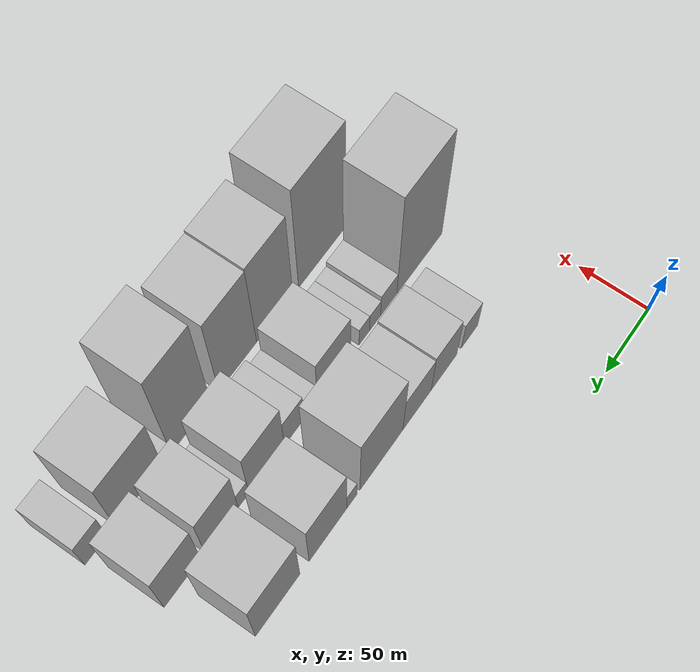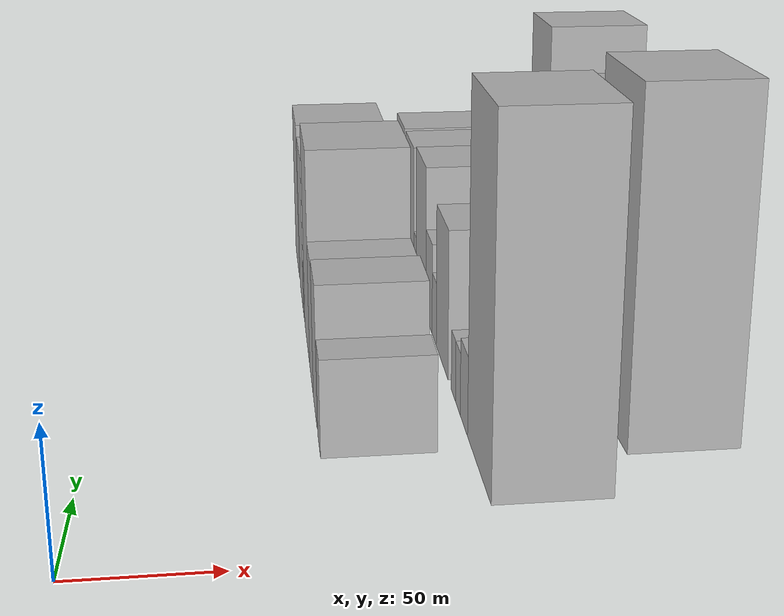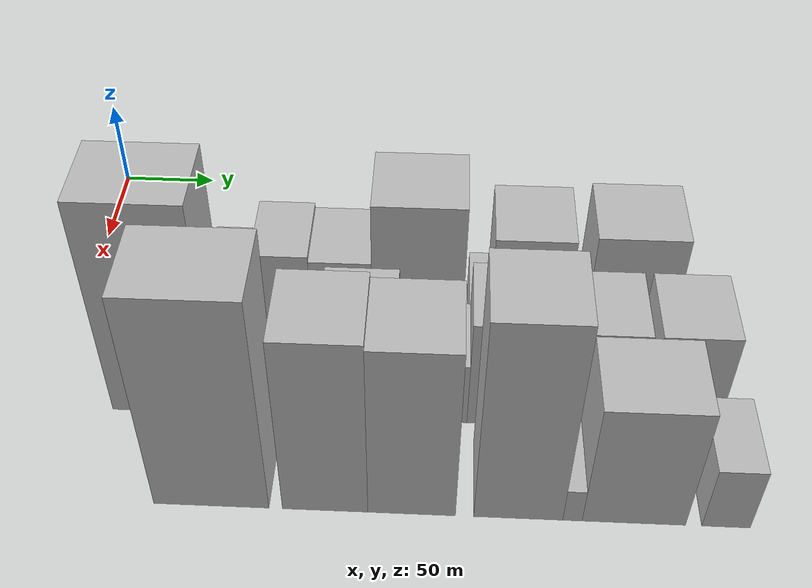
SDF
<sdf version="1.6">
 <world name="default">
  <model name="building_18">
   <static>1</static>
   <pose>100.0000 78.0467 0 0.000000 0.000000 0.000000</pose>
   <link name="link">
    <pose>0 0 18.00 0 0 0</pose>
    <collision name="collision"><geometry><box><size>40.0000 18.3079 36.0000</size></box></geometry></collision>
    <visual name="visual">
     <cast_shadows>0</cast_shadows>
     <geometry><box><size>40.0000 18.3079 36.0000</size></box></geometry>
     <material>
      <script>
       <uri>model://HANNAS_wall/materials/scripts</uri>
       <uri>model://HANNAS_wall/materials/textures</uri>
       <name>vrc/HANNAS_wall</name>
      </script>
     </material>
    </visual>
   </link>
  </model>
  <model name="building_19">
   <static>1</static>
   <pose>100.0000 106.0688 0 0.000000 0.000000 0.000000</pose>
   <link name="link">
    <pose>0 0 27.00 0 0 0</pose>
    <collision name="collision"><geometry><box><size>40.0000 27.7362 54.0000</size></box></geometry></collision>
    <visual name="visual">
     <cast_shadows>0</cast_shadows>
     <geometry><box><size>40.0000 27.7362 54.0000</size></box></geometry>
     <material>
      <script>
       <uri>model://HANNAS_wall/materials/scripts</uri>
       <uri>model://HANNAS_wall/materials/textures</uri>
       <name>vrc/HANNAS_wall</name>
      </script>
     </material>
    </visual>
   </link>
  </model>
  <model name="building_20">
   <static>1</static>
   <pose>100.0000 135.0909 0 0.000000 0.000000 0.000000</pose>
   <link name="link">
    <pose>0 0 25.50 0 0 0</pose>
    <collision name="collision"><geometry><box><size>40.0000 30.3081 51.0000</size></box></geometry></collision>
    <visual name="visual">
     <cast_shadows>0</cast_shadows>
     <geometry><box><size>40.0000 30.3081 51.0000</size></box></geometry>
     <material>
      <script>
       <uri>model://HANNAS_wall/materials/scripts</uri>
       <uri>model://HANNAS_wall/materials/textures</uri>
       <name>vrc/HANNAS_wall</name>
      </script>
     </material>
    </visual>
   </link>
  </model>
  <model name="building_21">
   <static>1</static>
   <pose>100.0000 172.5904 0 0.000000 0.000000 0.000000</pose>
   <link name="link">
    <pose>0 0 43.50 0 0 0</pose>
    <collision name="collision"><geometry><box><size>40.0000 44.6907 87.0000</size></box></geometry></collision>
    <visual name="visual">
     <cast_shadows>0</cast_shadows>
     <geometry><box><size>40.0000 44.6907 87.0000</size></box></geometry>
     <material>
      <script>
       <uri>model://HANNAS_wall/materials/scripts</uri>
       <uri>model://HANNAS_wall/materials/textures</uri>
       <name>vrc/HANNAS_wall</name>
      </script>
     </material>
    </visual>
   </link>
  </model>
  <model name="building_22">
   <static>1</static>
   <pose>100.0000 203.0269 0 0.000000 0.000000 0.000000</pose>
   <link name="link">
    <pose>0 0 12.00 0 0 0</pose>
    <collision name="collision"><geometry><box><size>40.0000 10.1823 24.0000</size></box></geometry></collision>
    <visual name="visual">
     <cast_shadows>0</cast_shadows>
     <geometry><box><size>40.0000 10.1823 24.0000</size></box></geometry>
     <material>
      <script>
       <uri>model://HANNAS_wall/materials/scripts</uri>
       <uri>model://HANNAS_wall/materials/textures</uri>
       <name>vrc/HANNAS_wall</name>
      </script>
     </material>
    </visual>
   </link>
  </model>
  <model name="building_23">
   <static>1</static>
   <pose>100.0000 227.0333 0 0.000000 0.000000 0.000000</pose>
   <link name="link">
    <pose>0 0 34.50 0 0 0</pose>
    <collision name="collision"><geometry><box><size>40.0000 37.8305 69.0000</size></box></geometry></collision>
    <visual name="visual">
     <cast_shadows>0</cast_shadows>
     <geometry><box><size>40.0000 37.8305 69.0000</size></box></geometry>
     <material>
      <script>
       <uri>model://HANNAS_wall/materials/scripts</uri>
       <uri>model://HANNAS_wall/materials/textures</uri>
       <name>vrc/HANNAS_wall</name>
      </script>
     </material>
    </visual>
   </link>
  </model>
  <model name="building_24">
   <static>1</static>
   <pose>100.0000 276.3763 0 0.000000 0.000000 0.000000</pose>
   <link name="link">
    <pose>0 0 36.00 0 0 0</pose>
    <collision name="collision"><geometry><box><size>40.0000 42.8556 72.0000</size></box></geometry></collision>
    <visual name="visual">
     <cast_shadows>0</cast_shadows>
     <geometry><box><size>40.0000 42.8556 72.0000</size></box></geometry>
     <material>
      <script>
       <uri>model://HANNAS_wall/materials/scripts</uri>
       <uri>model://HANNAS_wall/materials/textures</uri>
       <name>vrc/HANNAS_wall</name>
      </script>
     </material>
    </visual>
   </link>
  </model>
  <model name="building_52">
   <static>1</static>
   <pose>152.0000 54.8650 0 0.000000 0.000000 0.000000</pose>
   <link name="link">
    <pose>0 0 64.50 0 0 0</pose>
    <collision name="collision"><geometry><box><size>40.0000 49.9821 129.0000</size></box></geometry></collision>
    <visual name="visual">
     <cast_shadows>0</cast_shadows>
     <geometry><box><size>40.0000 49.9821 129.0000</size></box></geometry>
     <material>
      <script>
       <uri>model://HANNAS_wall/materials/scripts</uri>
       <uri>model://HANNAS_wall/materials/textures</uri>
       <name>vrc/HANNAS_wall</name>
      </script>
     </material>
    </visual>
   </link>
  </model>
  <model name="building_53">
   <static>1</static>
   <pose>152.0000 88.7823 0 0.000000 0.000000 0.000000</pose>
   <link name="link">
    <pose>0 0 15.00 0 0 0</pose>
    <collision name="collision"><geometry><box><size>40.0000 17.8526 30.0000</size></box></geometry></collision>
    <visual name="visual">
     <cast_shadows>0</cast_shadows>
     <geometry><box><size>40.0000 17.8526 30.0000</size></box></geometry>
     <material>
      <script>
       <uri>model://HANNAS_wall/materials/scripts</uri>
       <uri>model://HANNAS_wall/materials/textures</uri>
       <name>vrc/HANNAS_wall</name>
      </script>
     </material>
    </visual>
   </link>
  </model>
  <model name="building_54">
   <static>1</static>
   <pose>152.0000 103.6320 0 0.000000 0.000000 0.000000</pose>
   <link name="link">
    <pose>0 0 12.00 0 0 0</pose>
    <collision name="collision"><geometry><box><size>40.0000 11.8467 24.0000</size></box></geometry></collision>
    <visual name="visual">
     <cast_shadows>0</cast_shadows>
     <geometry><box><size>40.0000 11.8467 24.0000</size></box></geometry>
     <material>
      <script>
       <uri>model://HANNAS_wall/materials/scripts</uri>
       <uri>model://HANNAS_wall/materials/textures</uri>
       <name>vrc/HANNAS_wall</name>
      </script>
     </material>
    </visual>
   </link>
  </model>
  <model name="building_55">
   <static>1</static>
   <pose>152.0000 115.1448 0 0.000000 0.000000 0.000000</pose>
   <link name="link">
    <pose>0 0 12.00 0 0 0</pose>
    <collision name="collision"><geometry><box><size>40.0000 11.1787 24.0000</size></box></geometry></collision>
    <visual name="visual">
     <cast_shadows>0</cast_shadows>
     <geometry><box><size>40.0000 11.1787 24.0000</size></box></geometry>
     <material>
      <script>
       <uri>model://HANNAS_wall/materials/scripts</uri>
       <uri>model://HANNAS_wall/materials/textures</uri>
       <name>vrc/HANNAS_wall</name>
      </script>
     </material>
    </visual>
   </link>
  </model>
  <model name="building_56">
   <static>1</static>
   <pose>152.0000 147.0022 0 0.000000 0.000000 0.000000</pose>
   <link name="link">
    <pose>0 0 30.00 0 0 0</pose>
    <collision name="collision"><geometry><box><size>40.0000 34.5362 60.0000</size></box></geometry></collision>
    <visual name="visual">
     <cast_shadows>0</cast_shadows>
     <geometry><box><size>40.0000 34.5362 60.0000</size></box></geometry>
     <material>
      <script>
       <uri>model://HANNAS_wall/materials/scripts</uri>
       <uri>model://HANNAS_wall/materials/textures</uri>
       <name>vrc/HANNAS_wall</name>
      </script>
     </material>
    </visual>
   </link>
  </model>
  <model name="building_57">
   <static>1</static>
   <pose>152.0000 170.9954 0 0.000000 0.000000 0.000000</pose>
   <link name="link">
    <pose>0 0 13.50 0 0 0</pose>
    <collision name="collision"><geometry><box><size>40.0000 13.4503 27.0000</size></box></geometry></collision>
    <visual name="visual">
     <cast_shadows>0</cast_shadows>
     <geometry><box><size>40.0000 13.4503 27.0000</size></box></geometry>
     <material>
      <script>
       <uri>model://HANNAS_wall/materials/scripts</uri>
       <uri>model://HANNAS_wall/materials/textures</uri>
       <name>vrc/HANNAS_wall</name>
      </script>
     </material>
    </visual>
   </link>
  </model>
  <model name="building_58">
   <static>1</static>
   <pose>152.0000 187.7708 0 0.000000 0.000000 0.000000</pose>
   <link name="link">
    <pose>0 0 19.50 0 0 0</pose>
    <collision name="collision"><geometry><box><size>40.0000 20.1006 39.0000</size></box></geometry></collision>
    <visual name="visual">
     <cast_shadows>0</cast_shadows>
     <geometry><box><size>40.0000 20.1006 39.0000</size></box></geometry>
     <material>
      <script>
       <uri>model://HANNAS_wall/materials/scripts</uri>
       <uri>model://HANNAS_wall/materials/textures</uri>
       <name>vrc/HANNAS_wall</name>
      </script>
     </material>
    </visual>
   </link>
  </model>
  <model name="building_59">
   <static>1</static>
   <pose>152.0000 215.5120 0 0.000000 0.000000 0.000000</pose>
   <link name="link">
    <pose>0 0 33.00 0 0 0</pose>
    <collision name="collision"><geometry><box><size>40.0000 35.3817 66.0000</size></box></geometry></collision>
    <visual name="visual">
     <cast_shadows>0</cast_shadows>
     <geometry><box><size>40.0000 35.3817 66.0000</size></box></geometry>
     <material>
      <script>
       <uri>model://HANNAS_wall/materials/scripts</uri>
       <uri>model://HANNAS_wall/materials/textures</uri>
       <name>vrc/HANNAS_wall</name>
      </script>
     </material>
    </visual>
   </link>
  </model>
  <model name="building_60">
   <static>1</static>
   <pose>152.0000 238.4505 0 0.000000 0.000000 0.000000</pose>
   <link name="link">
    <pose>0 0 12.00 0 0 0</pose>
    <collision name="collision"><geometry><box><size>40.0000 10.4954 24.0000</size></box></geometry></collision>
    <visual name="visual">
     <cast_shadows>0</cast_shadows>
     <geometry><box><size>40.0000 10.4954 24.0000</size></box></geometry>
     <material>
      <script>
       <uri>model://HANNAS_wall/materials/scripts</uri>
       <uri>model://HANNAS_wall/materials/textures</uri>
       <name>vrc/HANNAS_wall</name>
      </script>
     </material>
    </visual>
   </link>
  </model>
  <model name="building_61">
   <static>1</static>
   <pose>152.0000 259.8015 0 0.000000 0.000000 0.000000</pose>
   <link name="link">
    <pose>0 0 31.50 0 0 0</pose>
    <collision name="collision"><geometry><box><size>40.0000 32.2067 63.0000</size></box></geometry></collision>
    <visual name="visual">
     <cast_shadows>0</cast_shadows>
     <geometry><box><size>40.0000 32.2067 63.0000</size></box></geometry>
     <material>
      <script>
       <uri>model://HANNAS_wall/materials/scripts</uri>
       <uri>model://HANNAS_wall/materials/textures</uri>
       <name>vrc/HANNAS_wall</name>
      </script>
     </material>
    </visual>
   </link>
  </model>
  <model name="building_62">
   <static>1</static>
   <pose>152.0000 297.1086 0 0.000000 0.000000 0.000000</pose>
   <link name="link">
    <pose>0 0 31.50 0 0 0</pose>
    <collision name="collision"><geometry><box><size>40.0000 34.4074 63.0000</size></box></geometry></collision>
    <visual name="visual">
     <cast_shadows>0</cast_shadows>
     <geometry><box><size>40.0000 34.4074 63.0000</size></box></geometry>
     <material>
      <script>
       <uri>model://HANNAS_wall/materials/scripts</uri>
       <uri>model://HANNAS_wall/materials/textures</uri>
       <name>vrc/HANNAS_wall</name>
      </script>
     </material>
    </visual>
   </link>
  </model>
  <model name="building_88">
   <static>1</static>
   <pose>204.0000 85.3522 0 0.000000 0.000000 0.000000</pose>
   <link name="link">
    <pose>0 0 64.50 0 0 0</pose>
    <collision name="collision"><geometry><box><size>40.0000 51.1096 129.0000</size></box></geometry></collision>
    <visual name="visual">
     <cast_shadows>0</cast_shadows>
     <geometry><box><size>40.0000 51.1096 129.0000</size></box></geometry>
     <material>
      <script>
       <uri>model://HANNAS_wall/materials/scripts</uri>
       <uri>model://HANNAS_wall/materials/textures</uri>
       <name>vrc/HANNAS_wall</name>
      </script>
     </material>
    </visual>
   </link>
  </model>
  <model name="building_89">
   <static>1</static>
   <pose>204.0000 135.7218 0 0.000000 0.000000 0.000000</pose>
   <link name="link">
    <pose>0 0 54.00 0 0 0</pose>
    <collision name="collision"><geometry><box><size>40.0000 37.6296 108.0000</size></box></geometry></collision>
    <visual name="visual">
     <cast_shadows>0</cast_shadows>
     <geometry><box><size>40.0000 37.6296 108.0000</size></box></geometry>
     <material>
      <script>
       <uri>model://HANNAS_wall/materials/scripts</uri>
       <uri>model://HANNAS_wall/materials/textures</uri>
       <name>vrc/HANNAS_wall</name>
      </script>
     </material>
    </visual>
   </link>
  </model>
  <model name="building_90">
   <static>1</static>
   <pose>204.0000 173.7433 0 0.000000 0.000000 0.000000</pose>
   <link name="link">
    <pose>0 0 52.50 0 0 0</pose>
    <collision name="collision"><geometry><box><size>40.0000 38.4134 105.0000</size></box></geometry></collision>
    <visual name="visual">
     <cast_shadows>0</cast_shadows>
     <geometry><box><size>40.0000 38.4134 105.0000</size></box></geometry>
     <material>
      <script>
       <uri>model://HANNAS_wall/materials/scripts</uri>
       <uri>model://HANNAS_wall/materials/textures</uri>
       <name>vrc/HANNAS_wall</name>
      </script>
     </material>
    </visual>
   </link>
  </model>
  <model name="building_91">
   <static>1</static>
   <pose>204.0000 220.3657 0 0.000000 0.000000 0.000000</pose>
   <link name="link">
    <pose>0 0 61.50 0 0 0</pose>
    <collision name="collision"><geometry><box><size>40.0000 38.8313 123.0000</size></box></geometry></collision>
    <visual name="visual">
     <cast_shadows>0</cast_shadows>
     <geometry><box><size>40.0000 38.8313 123.0000</size></box></geometry>
     <material>
      <script>
       <uri>model://HANNAS_wall/materials/scripts</uri>
       <uri>model://HANNAS_wall/materials/textures</uri>
       <name>vrc/HANNAS_wall</name>
      </script>
     </material>
    </visual>
   </link>
  </model>
  <model name="building_92">
   <static>1</static>
   <pose>204.0000 243.9917 0 0.000000 0.000000 0.000000</pose>
   <link name="link">
    <pose>0 0 10.50 0 0 0</pose>
    <collision name="collision"><geometry><box><size>40.0000 8.4208 21.0000</size></box></geometry></collision>
    <visual name="visual">
     <cast_shadows>0</cast_shadows>
     <geometry><box><size>40.0000 8.4208 21.0000</size></box></geometry>
     <material>
      <script>
       <uri>model://HANNAS_wall/materials/scripts</uri>
       <uri>model://HANNAS_wall/materials/textures</uri>
       <name>vrc/HANNAS_wall</name>
      </script>
     </material>
    </visual>
   </link>
  </model>
  <model name="building_93">
   <static>1</static>
   <pose>204.0000 270.5901 0 0.000000 0.000000 0.000000</pose>
   <link name="link">
    <pose>0 0 37.50 0 0 0</pose>
    <collision name="collision"><geometry><box><size>40.0000 44.7759 75.0000</size></box></geometry></collision>
    <visual name="visual">
     <cast_shadows>0</cast_shadows>
     <geometry><box><size>40.0000 44.7759 75.0000</size></box></geometry>
     <material>
      <script>
       <uri>model://HANNAS_wall/materials/scripts</uri>
       <uri>model://HANNAS_wall/materials/textures</uri>
       <name>vrc/HANNAS_wall</name>
      </script>
     </material>
    </visual>
   </link>
  </model>
  <model name="building_94">
   <static>1</static>
   <pose>204.0000 310.4225 0 0.000000 0.000000 0.000000</pose>
   <link name="link">
    <pose>0 0 19.50 0 0 0</pose>
    <collision name="collision"><geometry><box><size>40.0000 20.8889 39.0000</size></box></geometry></collision>
    <visual name="visual">
     <cast_shadows>0</cast_shadows>
     <geometry><box><size>40.0000 20.8889 39.0000</size></box></geometry>
     <material>
      <script>
       <uri>model://HANNAS_wall/materials/scripts</uri>
       <uri>model://HANNAS_wall/materials/textures</uri>
       <name>vrc/HANNAS_wall</name>
      </script>
     </material>
    </visual>
   </link>
  </model>
 </world>
</sdf>
